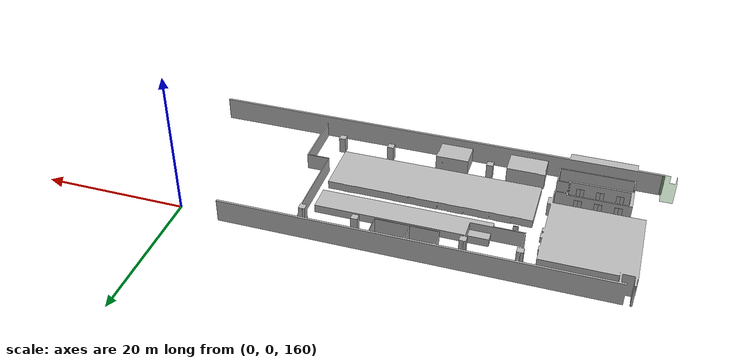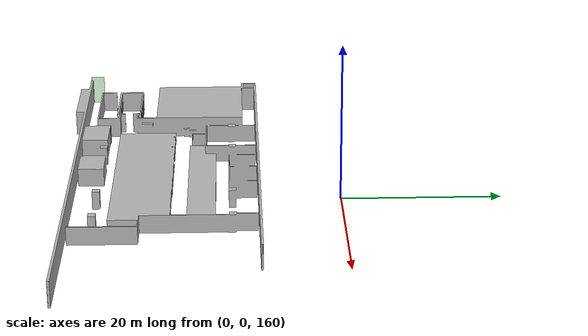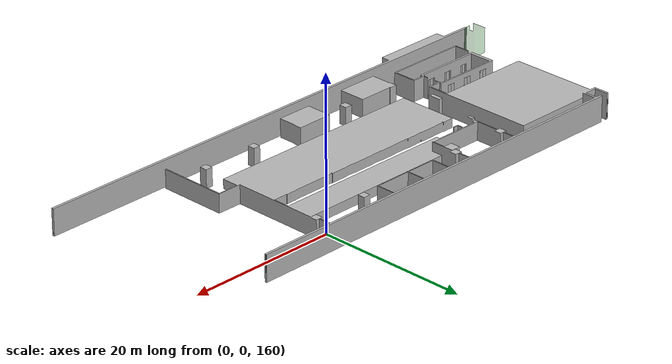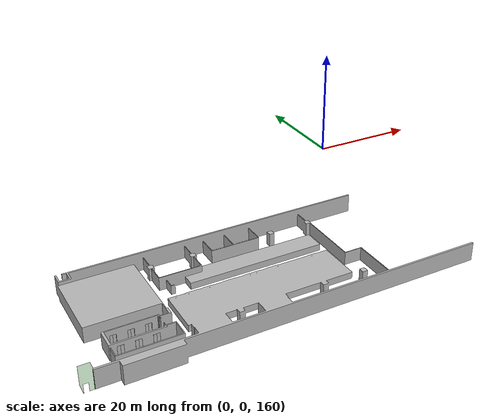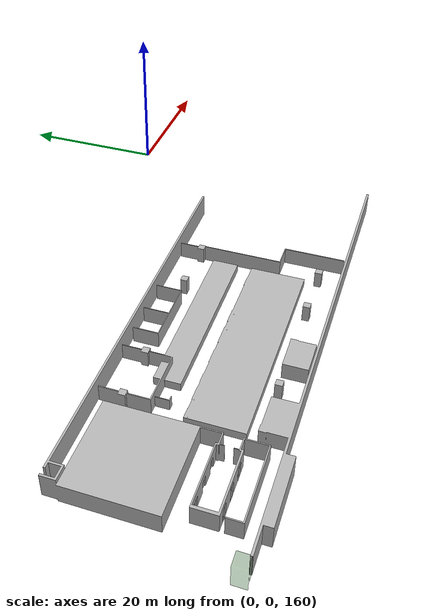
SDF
<?xml version='1.0'?>
<sdf version='1.6'>
<model name='seocho_25F_base'>
  <static>1</static>
  <allow_auto_disable>1</allow_auto_disable>
  <link name='seocho_25F_base_body_link'>
    <collision name='collision'>
      <geometry>
        <mesh>
          <scale>0.1 0.1 0.1</scale>
          <uri>model://seocho_25F_base/meshes/25F_base_col.obj</uri>
        </mesh>
      </geometry>
    </collision>
      <collision name='bottom_collision'>
        <geometry>
          <mesh>
            <scale>0.1 0.1 0.1</scale>
            <uri>model://seocho_25F_base/meshes/25F_bottom_col.obj</uri>
          </mesh>
        </geometry>
      </collision>
    <visual name='visual'>
      <geometry>
        <mesh>
          <scale>0.1 0.1 0.1</scale>
          <uri>model://seocho_25F_base/meshes/25F_base.obj</uri>
        </mesh>
      </geometry>
      <material>
        <emissive>0.005 0.005 0.005 1</emissive>
      </material>
      <cast_shadows>0</cast_shadows>
    </visual>
  </link>
  <link name='seocho_25_glass_link'>
    <visual name='visual'>
      <geometry>
        <mesh>
          <scale>0.1 0.1 0.1</scale>
          <uri>model://seocho_25F_base/meshes/25F_glass.obj</uri>
        </mesh>
      </geometry>
      <material>
        <diffuse>0 0.4 0 0.3</diffuse>
      </material>
      <cast_shadows>0</cast_shadows>
    </visual>
  </link>

  <include>
    <name>EV_1_outside_door</name>
    <pose>-50.3762 -27.43527 150.13362 0 0 0</pose>
    <uri>model://seocho_EV_out_doors</uri>
  </include>

  <include>
    <name>EV_2_outside_door</name>
    <pose>-53.3583 -27.43527 150.13362 0 0 0</pose>
    <uri>model://seocho_EV_out_doors</uri>
  </include>

  <include>
    <name>EV_3_outside_door</name>
    <pose>-56.34427 -27.43527 150.13362 0 0 0</pose>
    <uri>model://seocho_EV_out_doors</uri>
  </include>

  <include>
    <name>EV_4_outside_door</name>
    <pose>-50.377726 -31.04938 150.13362 0 0 -3.140000</pose>
    <uri>model://seocho_EV_out_doors</uri>
  </include>

  <include>
    <name>EV_5_outside_door</name>
    <pose>-53.35871 -31.04938 150.13362 0 0 -3.140000</pose>
    <uri>model://seocho_EV_out_doors</uri>
  </include>

  <include>
    <name>EV_6_outside_door</name>
    <pose>-56.34862 -31.04938 150.13362 0 0 -3.140000</pose>
    <uri>model://seocho_EV_out_doors</uri>
  </include>

</model>
</sdf>

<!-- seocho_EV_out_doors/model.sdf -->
<sdf version='1.6'>
<model name='seocho_EV_out_doors'>
  <static>1</static>
  <allow_auto_disable>1</allow_auto_disable>
  <link name='seocho_EV_out_doors_L_link'>
    <collision name='collision'>
      <geometry>
        <mesh>
          <scale>0.1 0.1 0.1</scale>
          <uri>model://seocho_EV_out_doors/meshes/B1_EV_door_L_out_col.obj</uri>
        </mesh>
      </geometry>
    </collision>
    <visual name='visual'>
      <geometry>
        <mesh>
          <scale>0.1 0.1 0.1</scale>
          <uri>model://seocho_EV_out_doors/meshes/B1_EV_door_L_out.obj</uri>
        </mesh>
      </geometry>
      <material>
        <emissive>0.02 0.02 0.02 1</emissive>
      </material>
    </visual>
  </link>
  <link name='seocho_EV_out_doors_R_link'>
    <collision name='collision'>
      <geometry>
        <mesh>
          <scale>0.1 0.1 0.1</scale>
          <uri>model://seocho_EV_out_doors/meshes/B1_EV_door_R_out_col.obj</uri>
        </mesh>
      </geometry>
    </collision>
    <visual name='visual'>
      <geometry>
        <mesh>
          <scale>0.1 0.1 0.1</scale>
          <uri>model://seocho_EV_out_doors/meshes/B1_EV_door_R_out.obj</uri>
        </mesh>
      </geometry>
      <material>
        <emissive>0.02 0.02 0.02 1</emissive>
      </material>
    </visual>
  </link>
</model>
</sdf>
